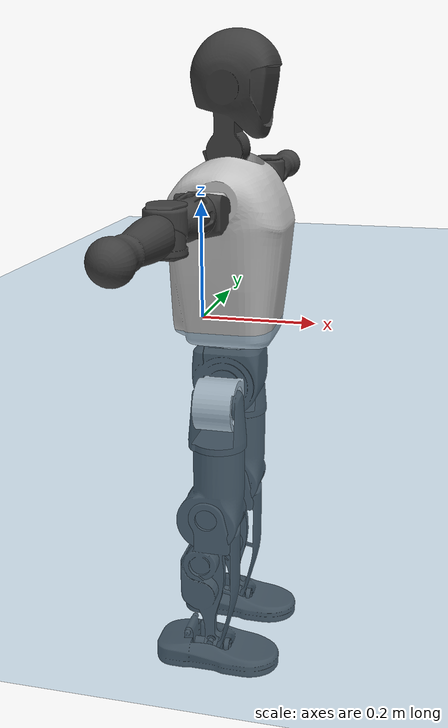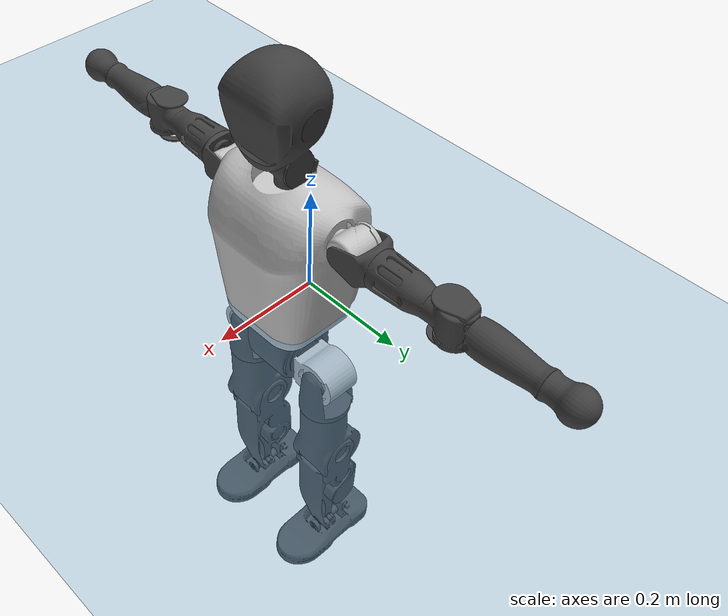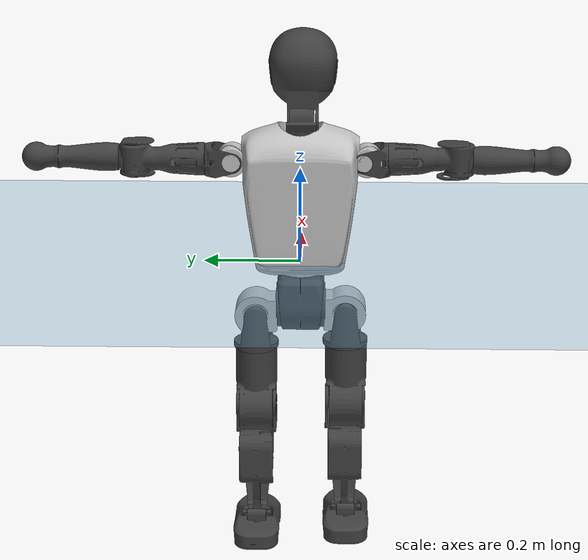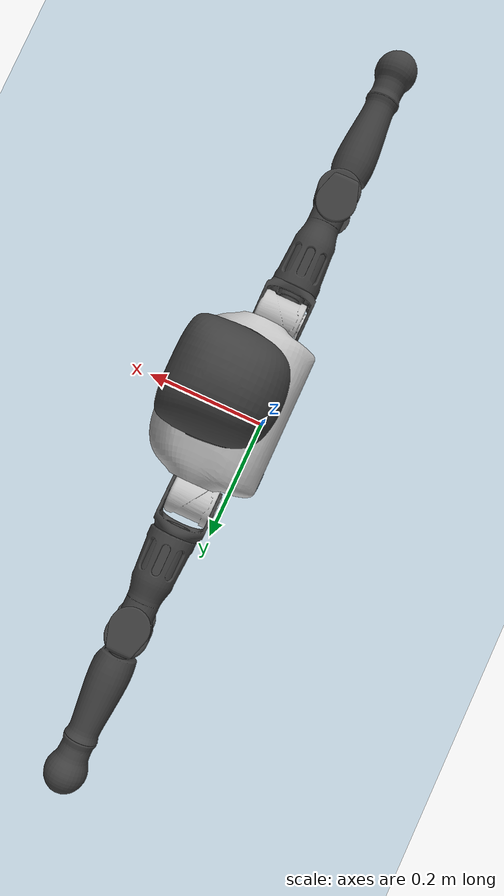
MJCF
<mujoco model="T1">
  <compiler angle="radian" assetdir="assets" balanceinertia="true" inertiafromgeom="false"/>

  <option timestep="0.005" density="1.2" viscosity="2e-05"/>

  <size nkey="1"/>

  <visual>
    <quality shadowsize="8192"/>
    <map shadowclip="0.5"/>
  </visual>

  <default>
    <default class="/">
      <joint armature="0.01" damping="0.01" frictionloss="0.1"/>
      <geom contype="0" conaffinity="0" group="1" solref="-1000 -80"/>
      <site size="0.01 0.005 0.005" group="5"/>
      <general forcelimited="true" biastype="affine" gainprm="25" biasprm="0 -25 -0.6"/>
      <default class="t1">
        <geom rgba="0.25 0.25 0.25 1"/>
        <default class="visual">
          <geom type="mesh" group="2"/>
        </default>
        <default class="collision">
          <geom group="3"/>
        </default>
        <default class="foot">
          <geom size="0.1115 0.05 0.015" type="box" condim="6" group="4" priority="1" solimp="0.015 1 0.015"/>
        </default>
        <default class="reward_collision_sphere">
          <geom group="5" rgba="1 0 0 1"/>
        </default>
      </default>
    </default>
  </default>

  <asset>
    <texture type="skybox" colorspace="auto" name="//unnamed_texture_0" builtin="gradient" rgb1="0.95 0.95 0.95" rgb2="0.95 0.95 0.95" width="100" height="600"/>
    <texture type="2d" colorspace="auto" name="texplane" builtin="checker" rgb1="0.345 0.575 0.748" rgb2="0.345 0.575 0.748" markrgb="1 1 1" width="512" height="512"/>
    <material name="MatPlane" class="/" texture="texplane" texuniform="true" texrepeat="2 2" specular="0.9"/>
    <mesh name="Trunk" class="/" file="Trunk.stl"/>
    <mesh name="H1" class="/" file="H1.stl"/>
    <mesh name="H2" class="/" file="H2.stl"/>
    <mesh name="AL1" class="/" file="AL1.stl"/>
    <mesh name="AL2" class="/" file="AL2.stl"/>
    <mesh name="AL3" class="/" file="AL3.stl"/>
    <mesh name="left_hand_link" class="/" file="left_hand_link.stl"/>
    <mesh name="AR1" class="/" file="AR1.stl"/>
    <mesh name="AR2" class="/" file="AR2.stl"/>
    <mesh name="AR3" class="/" file="AR3.stl"/>
    <mesh name="right_hand_link" class="/" file="right_hand_link.stl"/>
    <mesh name="Waist" class="/" file="Waist.stl"/>
    <mesh name="Hip_Pitch_Left" class="/" file="Hip_Pitch_Left.stl"/>
    <mesh name="Hip_Roll_Left" class="/" file="Hip_Roll_Left.stl"/>
    <mesh name="Hip_Yaw_Left" class="/" file="Hip_Yaw_Left.stl"/>
    <mesh name="Shank_Left" class="/" file="Shank_Left.stl"/>
    <mesh name="Ankle_Cross_Left" class="/" file="Ankle_Cross_Left.stl"/>
    <mesh name="left_foot_link" class="/" file="left_foot_link.stl"/>
    <mesh name="Hip_Pitch_Right" class="/" file="Hip_Pitch_Right.stl"/>
    <mesh name="Hip_Roll_Right" class="/" file="Hip_Roll_Right.stl"/>
    <mesh name="Hip_Yaw_Right" class="/" file="Hip_Yaw_Right.stl"/>
    <mesh name="Shank_Right" class="/" file="Shank_Right.stl"/>
    <mesh name="Ankle_Cross_Right" class="/" file="Ankle_Cross_Right.stl"/>
    <mesh name="right_foot_link" class="/" file="right_foot_link.stl"/>
  </asset>

  <worldbody>
    <geom name="floor" class="/" size="100 100 0.125" type="plane" group="0" material="MatPlane"/>
    <light name="toplight_shadow" class="/" pos="0 0 5" dir="0.0990148 0.0990148 -0.990148" type="directional" ambient="0.04 0.04 0.04" diffuse="0.55 0.55 0.55" specular="0.12 0.12 0.12"/>
    <light name="toplight_fill" class="/" pos="0 0 5" dir="0.0990148 0.0990148 -0.990148" type="directional" castshadow="false" ambient="0.04 0.04 0.04" diffuse="0.3 0.3 0.3" specular="0.08 0.08 0.08"/>
    <body name="trunk" childclass="t1" pos="-0.000295695 0.000105611 0.00246253" quat="1 -0.0001491 -4.04875e-05 0.000236579">
      <inertial pos="0.0445028 -0.000189378 0.0989778" quat="0.999933 0.00319993 -0.0110908 -5.67801e-05" mass="7.54016" diaginertia="0.0300322 0.0416602 0.0379566"/>
      <joint name="//unnamed_joint_0" type="free" armature="0" damping="0" frictionloss="0"/>
      <geom name="//unnamed_geom_1" class="visual" rgba="0.76 0.76 0.76 1" mesh="Trunk"/>
      <geom name="//unnamed_geom_2" class="collision" size="0.0657006 0.0876008 0.131401" pos="0.0483452 0 0.112231" type="box"/>
      <geom name="//unnamed_geom_3" class="reward_collision_sphere" size="0.100741" pos="0.0483452 0 0.0935258"/>
      <geom name="//unnamed_geom_4" class="reward_collision_sphere" size="0.0131401" pos="0.0483452 0.0753961 0"/>
      <geom name="//unnamed_geom_5" class="reward_collision_sphere" size="0.0131401" pos="0.0483452 -0.0753961 0"/>
      <geom name="//unnamed_geom_6" class="reward_collision_sphere" size="0.0131401" pos="0.0483452 0.0949104 0.168346"/>
      <geom name="//unnamed_geom_7" class="reward_collision_sphere" size="0.0131401" pos="0.0483452 -0.0949104 0.168346"/>
      <site name="imu" pos="0.0130048 -0.0134189 0.000690854" size="0.00876008"/>
      <camera name="track" pos="0 -1.77403 0" quat="0.707107 0.707107 0 0" mode="trackcom"/>
      <camera name="ego_camera" pos="0.0983019 0 0.392808" quat="-0.5 -0.5 0.5 0.5"/>
      <body name="H1" pos="0.0492483 -0.00184604 0.227126" quat="1 -0.000416654 -0.000306903 -2.4746e-05">
        <inertial pos="-0.000666835 -0.000387751 0.0547857" quat="0.761998 -0.0152037 0.000555901 0.647401" mass="0.300067" diaginertia="8.5373e-05 0.000122606 0.000111191"/>
        <joint name="AAHead_yaw" pos="0 0 0" axis="0.000215871 0.000102421 1" stiffness="0.0125391" range="-1.56926 1.60075" armature="0.00838705" damping="0.00539071" frictionloss="0.091383"/>
        <geom name="//unnamed_geom_8" class="visual" mesh="H1"/>
        <body name="H2" pos="-0.000238829 -0.00282323 0.0583769" quat="1 5.94792e-05 0.000166859 -0.000144066">
          <inertial pos="0.00817854 0.00353096 0.0938366" quat="0.988444 0.107606 -0.0742417 -0.0767306" mass="0.440652" diaginertia="0.000693809 0.00107078 0.00125486"/>
          <joint name="Head_pitch" pos="0 0 0" axis="-0.0024244 -0.999989 0.00392348" stiffness="0.00189223" range="-1.21707 0.386659" armature="0.00762213" damping="0.000383825" frictionloss="0.0886018"/>
          <geom name="//unnamed_geom_9" class="visual" mesh="H2"/>
          <geom name="//unnamed_geom_10" class="collision" size="0.0700806" pos="0.00805753 0 0.102878"/>
          <geom name="//unnamed_geom_11" class="reward_collision_sphere" size="0.0788407" pos="0.0161151 0 0.0935258"/>
        </body>
      </body>
      <body name="AL1" pos="0.0463536 0.095453 0.203732" quat="1 5.34333e-06 0.000437653 -7.40747e-07">
        <inertial pos="-0.000256168 0.0402837 0.00262283" quat="0.504142 0.493044 -0.507937 0.494721" mass="0.362683" diaginertia="0.000472471 0.000714305 0.000211135"/>
        <joint name="Left_Shoulder_Pitch" pos="0 0 0" axis="0.00514912 0.999986 -0.00104712" range="-3.36324 1.18212" armature="0.00828115" damping="0.00453898" frictionloss="0.0887936"/>
        <geom name="//unnamed_geom_12" class="visual" rgba="0.76 0.76 0.76 1" mesh="AL1"/>
        <body name="AL2" pos="0.000511064 0.0454244 -0.00122779" quat="0.999999 0.000331212 -0.00102254 0.000911607">
          <inertial pos="0.00330476 0.0328596 -0.00248761" quat="0.488344 0.511802 -0.491128 0.508302" mass="0.114672" diaginertia="0.00014101 0.000202031 0.000132396"/>
          <joint name="Left_Shoulder_Roll" pos="0 0 0" axis="-0.999998 -0.00197616 -0.000239297" range="-1.60923 1.75492" armature="0.00913028" damping="0" frictionloss="0.0887693"/>
          <geom name="//unnamed_geom_13" class="visual" mesh="AL2"/>
          <body name="AL3" pos="0.00277287 0.0570332 0.000935369" quat="0.999999 0.000721029 0.00069256 -0.000546373">
            <inertial pos="-0.00119891 0.0755679 0.000240696" quat="0.705696 0.7084 0.000784179 0.0127442" mass="0.708723" diaginertia="0.00451612 0.00729661 0.000455064"/>
            <joint name="Left_Elbow_Pitch" pos="0 0 0" axis="-0.00122166 -0.999996 -0.00254043" range="-2.28501 2.28061" armature="0.00901153" damping="0.0114785" frictionloss="0.0897706"/>
            <geom name="//unnamed_geom_14" class="visual" mesh="AL3"/>
            <geom name="//unnamed_geom_15" class="collision" size="0.0262802 0.0657006" pos="0 0.0443507 0" quat="0.707105 0.707108 0 0" type="cylinder"/>
            <geom name="//unnamed_geom_16" class="reward_collision_sphere" size="0.0315363"/>
            <body name="left_hand_link" pos="0.000349836 0.133477 0.00292741" quat="0.999999 3.02928e-05 0.000619248 0.00122276">
              <inertial pos="-0.000208411 0.0968221 -0.00214681" quat="0.703815 0.710282 -0.00203447 0.0118524" mass="0.212174" diaginertia="0.0027154 0.00435489 0.000147647"/>
              <joint name="Left_Elbow_Yaw" pos="0 0 0" axis="-0.0103325 -0.0120672 0.999874" range="-2.44423 0.0456037" armature="0.00891725" damping="0.00297778" frictionloss="0.098978"/>
              <geom name="//unnamed_geom_17" class="visual" mesh="left_hand_link"/>
              <geom name="//unnamed_geom_18" class="collision" size="0.0262802 0.0766507" pos="0 0.115312 0" quat="0.707105 0.707108 0 0" type="cylinder"/>
              <geom name="//unnamed_geom_19" class="reward_collision_sphere" size="0.0438004"/>
              <geom name="//unnamed_geom_20" class="reward_collision_sphere" size="0.0306603" pos="0 0.0975714 0"/>
              <geom name="//unnamed_geom_21" class="reward_collision_sphere" size="0.0306603" pos="0 0.190708 0"/>
            </body>
          </body>
        </body>
      </body>
      <body name="AR1" pos="0.0434441 -0.09102 0.204166" quat="1 -0.000311641 0.000351335 -0.000422726">
        <inertial pos="-0.00102865 -0.0391365 -0.00110287" quat="0.504435 0.495687 -0.504064 0.495741" mass="0.361393" diaginertia="0.000469324 0.000722934 0.000209217"/>
        <joint name="Right_Shoulder_Pitch" pos="0 0 0" axis="0.00258739 -0.999989 -0.00388654" stiffness="0.0164826" range="-1.17369 3.32939" armature="0.0085301" damping="0.0208911" frictionloss="0.0890851"/>
        <geom name="//unnamed_geom_22" class="visual" rgba="0.76 0.76 0.76 1" mesh="AR1"/>
        <body name="AR2" pos="-0.00286779 -0.0384174 0.000599457" quat="1 0.00040953 0.000430452 -8.25709e-05">
          <inertial pos="0.00135522 -0.0336436 -0.00177676" quat="0.510237 0.483384 -0.513563 0.49219" mass="0.106257" diaginertia="0.000131505 0.000183473 0.00012769"/>
          <joint name="Right_Shoulder_Roll" pos="0 0 0" axis="-0.999979 -0.00261109 -0.00591492" stiffness="0.0101245" range="-1.72057 1.51741" armature="0.00901009" damping="0.00564455" frictionloss="0.0757448"/>
          <geom name="//unnamed_geom_23" class="visual" mesh="AR2"/>
          <body name="AR3" pos="-0.00113508 -0.0510604 0.00243979" quat="1 3.76388e-05 0.000188992 -0.000200458">
            <inertial pos="-0.000312166 -0.0747585 -0.000501142" quat="0.704984 0.709125 0.00211519 0.0116355" mass="0.674802" diaginertia="0.0042978 0.00715345 0.000447936"/>
            <joint name="Right_Elbow_Pitch" pos="0 0 0" axis="-0.000678405 0.999999 -0.00122577" stiffness="0.0121211" range="-2.26981 2.26554" armature="0.00919091" damping="0.0142486" frictionloss="0.0993806"/>
            <geom name="//unnamed_geom_24" class="visual" mesh="AR3"/>
            <geom name="//unnamed_geom_25" class="collision" size="0.0262802 0.0657006" pos="0 -0.0443507 0" quat="0.707105 0.707108 0 0" type="cylinder"/>
            <geom name="//unnamed_geom_26" class="reward_collision_sphere" size="0.0315363"/>
            <body name="right_hand_link" pos="-0.00288695 -0.129191 -0.00114442" quat="1 0.000424346 0.000434735 -0.000257663">
              <inertial pos="-0.00115466 -0.0974465 0.00340263" quat="0.708786 0.705303 0.0034699 -0.0125712" mass="0.209975" diaginertia="0.00261909 0.00434381 0.00014888"/>
              <joint name="Right_Elbow_Yaw" pos="0 0 0" axis="-0.00284192 0.00051626 0.999996" stiffness="0.00374055" range="-0.0508119 2.41781" armature="0.0100373" damping="0.00916386" frictionloss="0.0882743"/>
              <geom name="//unnamed_geom_27" class="visual" mesh="right_hand_link"/>
              <geom name="//unnamed_geom_28" class="collision" size="0.0262802 0.0766507" pos="0 -0.115312 0" quat="0.707105 0.707108 0 0" type="cylinder"/>
              <geom name="//unnamed_geom_29" class="reward_collision_sphere" size="0.0438004"/>
              <geom name="//unnamed_geom_30" class="reward_collision_sphere" size="0.0306603" pos="0 -0.0975714 0"/>
              <geom name="//unnamed_geom_31" class="reward_collision_sphere" size="0.0306603" pos="0 -0.190708 0"/>
            </body>
          </body>
        </body>
      </body>
      <body name="Waist" pos="0.0506565 -0.0011624 -0.110323" quat="1 -3.68345e-05 -0.000106721 -2.02057e-05">
        <inertial pos="0.00403968 -0.00103738 0.00604294" quat="0.983894 0.000761759 -0.17875 0.00107275" mass="1.72051" diaginertia="0.00176916 0.00272435 0.00324713"/>
        <joint name="Waist" pos="0 0 0" axis="-0.00350377 -3.43831e-05 0.999994" range="-1.519 1.57497" armature="0.00771714" damping="0.0118473" frictionloss="0.0898462"/>
        <geom name="//unnamed_geom_32" class="visual" mesh="Waist"/>
        <body name="Hip_Pitch_Left" pos="-0.00183411 0.0959788 -0.000875897" quat="0.999999 0.00121208 1.98953e-05 -0.000250003">
          <inertial pos="-0.00040957 -0.00403445 -0.0167424" quat="0.975081 0.221378 0.014319 0.00168892" mass="0.680455" diaginertia="0.000603614 0.0008084 0.000877264"/>
          <joint name="Left_Hip_Pitch" pos="0 0 0" axis="0.000186714 0.999999 -0.00131585" stiffness="0.00928058" range="-1.79803 1.60916" armature="0.00883445" damping="0.013195" frictionloss="0.0876165"/>
          <geom name="//unnamed_geom_33" class="visual" rgba="0.76 0.76 0.76 1" mesh="Hip_Pitch_Left"/>
          <body name="Hip_Roll_Left" pos="0.000748501 -6.81859e-05 -0.0205659" quat="0.999999 -4.19597e-05 0.00105078 -0.000284048">
            <inertial pos="0.000687121 -0.000131625 -0.0494737" quat="0.707423 -0.00360327 -0.00487822 0.706765" mass="0.260572" diaginertia="0.000594989 0.000810689 0.000358563"/>
            <joint name="Left_Hip_Roll" pos="0 0 0" axis="-0.999998 -6.73459e-05 0.00203397" range="-1.58467 0.215569" armature="0.00868801" damping="0.0145382" frictionloss="0.098428"/>
            <geom name="//unnamed_geom_34" class="visual" mesh="Hip_Roll_Left"/>
            <geom name="//unnamed_geom_35" class="reward_collision_sphere" size="0.0481804"/>
            <body name="Hip_Yaw_Left" pos="0.00103624 -0.000475541 -0.0786575" quat="1 4.88107e-05 -0.000200065 0.000731045">
              <inertial pos="-0.00438136 -0.00103798 -0.0844609" quat="0.693149 -0.0235173 -0.0259426 0.719943" mass="1.44097" diaginertia="0.00863484 0.0134329 0.00187772"/>
              <joint name="Left_Hip_Yaw" pos="0 0 0" axis="0.0109734 0.00194192 -0.999938" range="-0.996676 0.982556" armature="0.00865656" damping="0.0137184" frictionloss="0.0879829"/>
              <geom name="//unnamed_geom_36" class="visual" mesh="Hip_Yaw_Left"/>
              <geom name="//unnamed_geom_37" class="collision" size="0.0438004 0.0700806" type="cylinder"/>
              <body name="Shank_Left" pos="-0.0112602 0.000175219 -0.126849" quat="1 0.000486088 0.00024835 1.06217e-06">
                <inertial pos="-0.00544387 0.000349201 -0.116436" quat="0.997432 -0.00932874 -0.0193562 0.0683207" mass="1.17537" diaginertia="0.0117257 0.0195946 0.00135273"/>
                <joint name="Left_Knee_Pitch" pos="0 0 0" axis="2.137e-05 1 -4.85205e-05" stiffness="0.00141516" range="-0.00210164 2.33921" armature="0.0085137" damping="0.0144209" frictionloss="0.0992619"/>
                <geom name="//unnamed_geom_38" class="visual" mesh="Shank_Left"/>
                <geom name="//unnamed_geom_39" class="collision" size="0.0438004 0.0657006" pos="0 0 -0.112231" type="cylinder"/>
                <geom name="//unnamed_geom_40" class="reward_collision_sphere" size="0.0569405"/>
                <body name="Ankle_Cross_Left" pos="-0.00132207 -0.000658471 -0.263598" quat="1 0.000433771 -0.000152435 0.000560987">
                  <inertial pos="-0.00203908 0.00107336 -0.0101008" quat="0.444017 0.55113 0.550278 0.443057" mass="0.0501081" diaginertia="1.05214e-05 1.42049e-05 8.23932e-06"/>
                  <joint name="Left_Ankle_Pitch" pos="0 0 0" axis="0.00321012 0.999979 0.00570643" range="-0.91865 0.378185" armature="0.0082708" damping="0.00957599" frictionloss="0.0993641"/>
                  <geom name="//unnamed_geom_41" class="visual" mesh="Ankle_Cross_Left"/>
                  <body name="left_foot_link" pos="0.00162642 -3.57803e-05 -0.0147871" quat="1 -3.95719e-05 6.15238e-05 6.41109e-05">
                    <inertial pos="0.000148441 -0.00269106 -0.00949148" quat="-0.000861601 0.622533 -0.00114159 0.782592" mass="0.456953" diaginertia="0.000941267 0.00131461 0.00155709"/>
                    <joint name="Left_Ankle_Roll" pos="0 0 0" axis="-0.999999 -6.38623e-05 -0.00144794" range="-0.476478 0.438577" armature="0.00882191" damping="0.0110581" frictionloss="0.0847818"/>
                    <geom name="//unnamed_geom_42" class="visual" mesh="left_foot_link"/>
                    <geom name="left_foot" class="foot" size="0.100003 0.0453833 0.0140939" pos="0.00805753 0 -0.0140289"/>
                    <geom name="//unnamed_geom_44" class="reward_collision_sphere" size="0.0455524" pos="0.00805753 0 -0.0140289"/>
                    <geom name="//unnamed_geom_45" class="reward_collision_sphere" size="0.0262802" pos="0.0765465 -0.0204013 -0.0140289"/>
                    <geom name="//unnamed_geom_46" class="reward_collision_sphere" size="0.0262802" pos="-0.0564027 -0.0204013 -0.0140289"/>
                    <site name="left_foot" class="foot" pos="0.00805753 0 -0.0140289" size="0.00876008"/>
                  </body>
                </body>
              </body>
            </body>
          </body>
        </body>
        <body name="Hip_Pitch_Right" pos="0.000999734 -0.0943181 0.00194314" quat="0.999999 -0.000429166 0.000223473 -0.000884329">
          <inertial pos="0.00044433 0.0061252 -0.0139442" quat="0.971765 -0.235561 0.0118983 0.00643936" mass="0.68033" diaginertia="0.000606445 0.000796178 0.000911967"/>
          <joint name="Right_Hip_Pitch" pos="0 0 0" axis="-0.00134019 -0.999936 0.0112543" range="-1.57651 1.81318" armature="0.00981718" damping="0.0122793" frictionloss="0.0933181"/>
          <geom name="//unnamed_geom_47" class="visual" rgba="0.76 0.76 0.76 1" mesh="Hip_Pitch_Right"/>
          <body name="Hip_Roll_Right" pos="0.0014339 -0.000577068 -0.0170368" quat="0.999999 0.000790594 0.000857286 0.000677025">
            <inertial pos="0.00388977 -0.000563011 -0.0521104" quat="0.70537 0.00570746 -0.00254281 0.708812" mass="0.251761" diaginertia="0.000560114 0.000800111 0.000357464"/>
            <joint name="Right_Hip_Roll" pos="0 0 0" axis="-0.999985 -0.00320792 0.00453118" stiffness="0.00676145" range="-0.20103 1.62278" armature="0.00861479" damping="0.00353111" frictionloss="0.088033"/>
            <geom name="//unnamed_geom_48" class="visual" mesh="Hip_Roll_Right"/>
            <geom name="//unnamed_geom_49" class="reward_collision_sphere" size="0.0481804"/>
            <body name="Hip_Yaw_Right" pos="0.000464511 -0.00223018 -0.0759435" quat="0.999999 -0.00102842 0.0009004 -0.000715246">
              <inertial pos="-0.00350751 0.000740896 -0.0840161" quat="0.717577 -0.0231473 -0.0319502 0.695361" mass="1.50644" diaginertia="0.00935084 0.0148302 0.00194029"/>
              <joint name="Right_Hip_Yaw" pos="0 0 0" axis="-0.00431086 -0.000832284 -0.99999" range="-1.01874 0.956467" armature="0.00884632" damping="0.00934144" frictionloss="0.0757501"/>
              <geom name="//unnamed_geom_50" class="visual" mesh="Hip_Yaw_Right"/>
              <geom name="//unnamed_geom_51" class="collision" size="0.0438004 0.0700806" type="cylinder"/>
              <body name="Shank_Right" pos="-0.0136914 0.00153966 -0.126129" quat="0.999999 -0.00050141 -0.000700654 -0.000921305">
                <inertial pos="-0.00214806 0.00103452 -0.113446" quat="0.999191 0.000302918 -0.0228927 -0.0330709" mass="1.25748" diaginertia="0.0119987 0.0187782 0.00138103"/>
                <joint name="Right_Knee_Pitch" pos="0 0 0" axis="0.00140371 -0.999994 0.00331438" stiffness="0.0053309" range="-2.32233 -0.00205819" armature="0.00864348" damping="0.0163468" frictionloss="0.0894427"/>
                <geom name="//unnamed_geom_52" class="visual" mesh="Shank_Right"/>
                <geom name="//unnamed_geom_53" class="collision" size="0.0438004 0.0657006" pos="0 0 -0.112231" type="cylinder"/>
                <geom name="//unnamed_geom_54" class="reward_collision_sphere" size="0.0569405"/>
                <body name="Ankle_Cross_Right" pos="-0.000143881 -0.000633612 -0.2637" quat="0.999999 0.000147483 0.00105041 0.000895366">
                  <inertial pos="-0.00284433 -7.83474e-05 -0.00695929" quat="0.442007 0.551555 0.550565 0.44418" mass="0.0461432" diaginertia="9.59717e-06 1.3742e-05 7.97335e-06"/>
                  <joint name="Right_Ankle_Pitch" pos="0 0 0" axis="-0.00765415 -0.999909 -0.0111366" range="-0.34453 0.827487" armature="0.00984337" damping="0" frictionloss="0.0763291"/>
                  <geom name="//unnamed_geom_55" class="visual" mesh="Ankle_Cross_Right"/>
                  <body name="right_foot_link" pos="0.00235467 -0.00228505 -0.00950938" quat="1 0.00012327 -0.000460548 -0.000375958">
                    <inertial pos="-0.000964683 -0.000626352 -0.0111255" quat="0.0027508 0.62329 0.00209475 0.781983" mass="0.47622" diaginertia="0.000894865 0.00130024 0.00155512"/>
                    <joint name="Right_Ankle_Roll" pos="0 0 0" axis="-0.999906 0.00871137 -0.0106068" range="-0.387268 0.455408" armature="0.00765384" damping="0.00646443" frictionloss="0.0859782"/>
                    <geom name="//unnamed_geom_56" class="visual" mesh="right_foot_link"/>
                    <geom name="right_foot" class="foot" size="0.094021 0.0444884 0.0135744" pos="0.00805753 0 -0.0140289"/>
                    <geom name="//unnamed_geom_58" class="reward_collision_sphere" size="0.0350403"/>
                    <geom name="//unnamed_geom_59" class="reward_collision_sphere" size="0.0262802" pos="0.00805753 0 -0.0140289"/>
                    <geom name="//unnamed_geom_60" class="reward_collision_sphere" size="0.0262802" pos="0.0765465 0.0204013 -0.0140289"/>
                    <geom name="//unnamed_geom_61" class="reward_collision_sphere" size="0.0262802" pos="-0.0564027 0.0204013 -0.0140289"/>
                    <site name="right_foot" class="foot" pos="0.00805753 0 -0.0140289" size="0.00876008"/>
                  </body>
                </body>
              </body>
            </body>
          </body>
        </body>
      </body>
    </body>
  </worldbody>

  <contact>
    <pair class="/" geom1="floor" geom2="left_foot" name="//unnamed_contact_0"/>
    <pair class="/" geom1="floor" geom2="right_foot" name="//unnamed_contact_1"/>
  </contact>

  <actuator>
    <general name="AAHead_yaw" class="/" joint="AAHead_yaw" forcerange="-5.97106 5.97106" gainprm="23.4591" biasprm="0 -23.4591 -0.518347"/>
    <general name="Head_pitch" class="/" joint="Head_pitch" forcerange="-5.95361 5.95361" gainprm="23.4591" biasprm="0 -23.4591 -0.518347"/>
    <general name="Left_Shoulder_Pitch" class="/" joint="Left_Shoulder_Pitch" forcerange="-15.332 15.332" gainprm="23.4591" biasprm="0 -23.4591 -0.518347"/>
    <general name="Left_Shoulder_Roll" class="/" joint="Left_Shoulder_Roll" forcerange="-15.7201 15.7201" gainprm="23.4591" biasprm="0 -23.4591 -0.518347"/>
    <general name="Left_Elbow_Pitch" class="/" joint="Left_Elbow_Pitch" forcerange="-17.3785 17.3785" gainprm="23.4591" biasprm="0 -23.4591 -0.518347"/>
    <general name="Left_Elbow_Yaw" class="/" joint="Left_Elbow_Yaw" forcerange="-16.4695 16.4695" gainprm="23.4591" biasprm="0 -23.4591 -0.518347"/>
    <general name="Right_Shoulder_Pitch" class="/" joint="Right_Shoulder_Pitch" forcerange="-15.7516 15.7516" gainprm="23.4591" biasprm="0 -23.4591 -0.518347"/>
    <general name="Right_Shoulder_Roll" class="/" joint="Right_Shoulder_Roll" forcerange="-15.6573 15.6573" gainprm="23.4591" biasprm="0 -23.4591 -0.518347"/>
    <general name="Right_Elbow_Pitch" class="/" joint="Right_Elbow_Pitch" forcerange="-16.2165 16.2165" gainprm="23.4591" biasprm="0 -23.4591 -0.518347"/>
    <general name="Right_Elbow_Yaw" class="/" joint="Right_Elbow_Yaw" forcerange="-17.2459 17.2459" gainprm="23.4591" biasprm="0 -23.4591 -0.518347"/>
    <general name="Waist" class="/" joint="Waist" forcerange="-27.0802 27.0802" gainprm="23.4591" biasprm="0 -23.4591 -0.518347"/>
    <general name="Left_Hip_Pitch" class="/" joint="Left_Hip_Pitch" forcerange="-35.5224 35.5224" gainprm="23.4591" biasprm="0 -23.4591 -0.518347"/>
    <general name="Left_Hip_Roll" class="/" joint="Left_Hip_Roll" forcerange="-25.1848 25.1848" gainprm="23.4591" biasprm="0 -23.4591 -0.518347"/>
    <general name="Left_Hip_Yaw" class="/" joint="Left_Hip_Yaw" forcerange="-25.8204 25.8204" gainprm="23.4591" biasprm="0 -23.4591 -0.518347"/>
    <general name="Left_Knee_Pitch" class="/" joint="Left_Knee_Pitch" forcerange="-57.316 57.316" gainprm="23.4591" biasprm="0 -23.4591 -0.518347"/>
    <general name="Left_Ankle_Pitch" class="/" joint="Left_Ankle_Pitch" forcerange="-16.8169 16.8169" gainprm="23.4591" biasprm="0 -23.4591 -0.518347"/>
    <general name="Left_Ankle_Roll" class="/" joint="Left_Ankle_Roll" forcerange="-13.3516 13.3516" gainprm="23.4591" biasprm="0 -23.4591 -0.518347"/>
    <general name="Right_Hip_Pitch" class="/" joint="Right_Hip_Pitch" forcerange="-43.4464 43.4464" gainprm="23.4591" biasprm="0 -23.4591 -0.518347"/>
    <general name="Right_Hip_Roll" class="/" joint="Right_Hip_Roll" forcerange="-25.1675 25.1675" gainprm="23.4591" biasprm="0 -23.4591 -0.518347"/>
    <general name="Right_Hip_Yaw" class="/" joint="Right_Hip_Yaw" forcerange="-25.7655 25.7655" gainprm="23.4591" biasprm="0 -23.4591 -0.518347"/>
    <general name="Right_Knee_Pitch" class="/" joint="Right_Knee_Pitch" forcerange="-55.8976 55.8976" gainprm="23.4591" biasprm="0 -23.4591 -0.518347"/>
    <general name="Right_Ankle_Pitch" class="/" joint="Right_Ankle_Pitch" forcerange="-17.1735 17.1735" gainprm="23.4591" biasprm="0 -23.4591 -0.518347"/>
    <general name="Right_Ankle_Roll" class="/" joint="Right_Ankle_Roll" forcerange="-11.8233 11.8233" gainprm="23.4591" biasprm="0 -23.4591 -0.518347"/>
  </actuator>

  <sensor>
    <gyro site="imu" name="imu_angular_velocity"/>
    <velocimeter site="imu" name="imu_linear_velocity"/>
    <framelinvel objtype="site" objname="left_foot" name="left_foot_global_linear_velocity"/>
    <framelinvel objtype="site" objname="right_foot" name="right_foot_global_linear_velocity"/>
  </sensor>

  <keyframe>
    <key name="home" qpos="0 0 0.6385 1 0 0 0 0 0 0 1.4 0 -0.4 0 -1.4 0 0.4 0 -0.4 0 0 0.8 -0.4 0 0.4 0 0 -0.8 0.4 0"/>
  </keyframe>
</mujoco>
